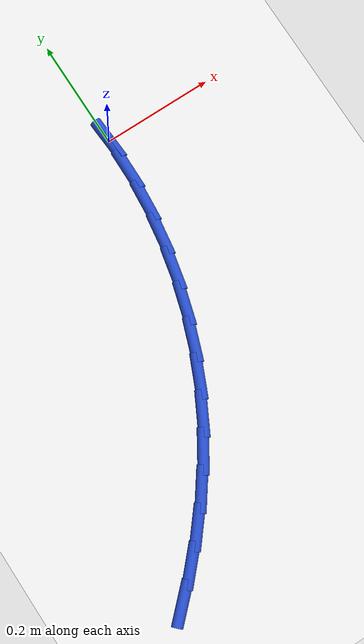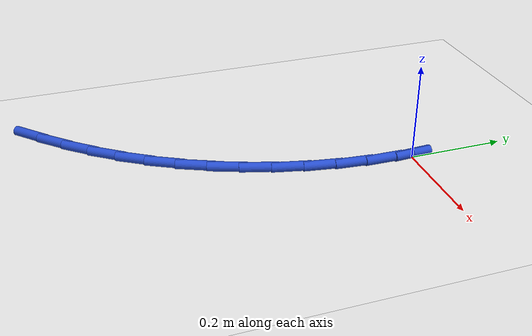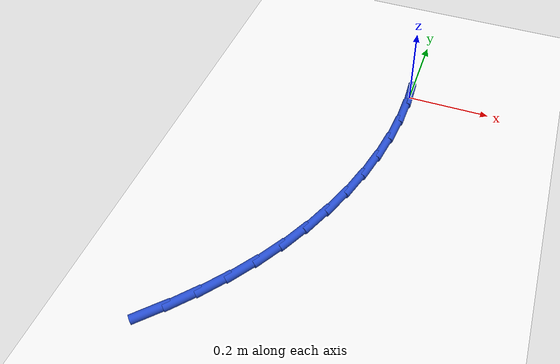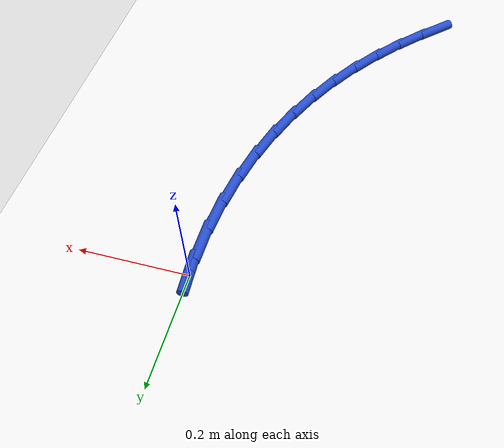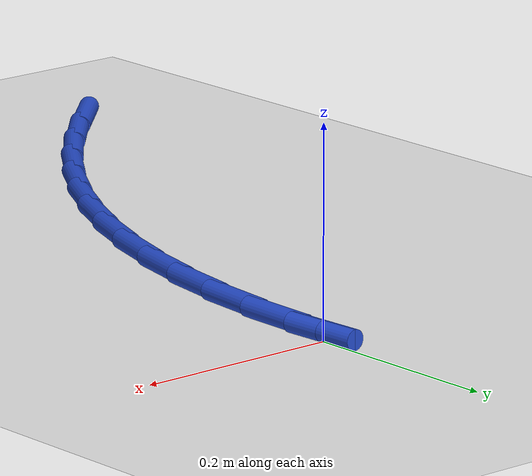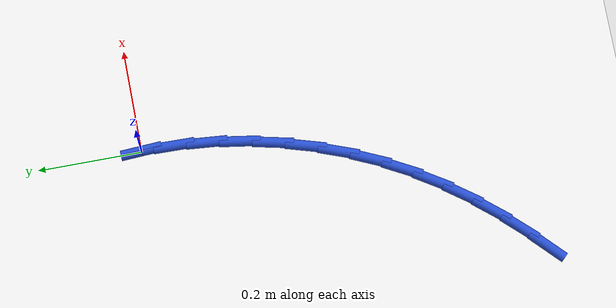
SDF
<sdf version="1.6">
 <world name="default">
  <model name="ground_plane">
   <static>1</static>
   <link name="link">
    <collision name="collision">
     <geometry><plane><normal>0 0 1</normal><size>100 100</size></plane></geometry>
     <surface><friction><ode><mu>100</mu><mu2>50</mu2></ode></friction></surface>
    </collision>
    <visual name="visual">
     <cast_shadows>0</cast_shadows>
     <geometry><plane><normal>0 0 1</normal><size>100 100</size></plane></geometry>
     <material>
      <script><uri>file://media/materials/scripts/gazebo.material</uri><name>Gazebo/WhiteGlow</name></script>
     </material>
    </visual>
   </link>
  </model>
  <model name="line">
   <link name="link_0">
    <pose>3.469446951953614e-18 -8.326672684688674e-17 0.01 0 1.57 -1.5146469651778538</pose>
    <collision name="collision">
     <geometry><cylinder><radius>0.01</radius><length>0.08</length></cylinder></geometry>
    </collision>
    <visual name="visual">
     <material>
      <script><name>Gazebo/Blue</name><uri>file://media/materials/scripts/gazebo.material</uri></script>
     </material>
     <geometry><cylinder><radius>0.01</radius><length>0.08</length></cylinder></geometry>
    </visual>
   </link>
   <link name="link_107">
    <pose>-0.3213144153851772 -0.7251555164156569 0.01 0 1.57 0.7711781265216275</pose>
    <collision name="collision">
     <geometry><cylinder><radius>0.01</radius><length>0.08</length></cylinder></geometry>
    </collision>
    <visual name="visual">
     <material>
      <script><name>Gazebo/Blue</name><uri>file://media/materials/scripts/gazebo.material</uri></script>
     </material>
     <geometry><cylinder><radius>0.01</radius><length>0.08</length></cylinder></geometry>
    </visual>
   </link>
   <link name="link_108">
    <pose>-0.27625879873450443 -0.6813634029291092 0.01 0 1.57 0.8242215288357422</pose>
    <collision name="collision">
     <geometry><cylinder><radius>0.01</radius><length>0.08</length></cylinder></geometry>
    </collision>
    <visual name="visual">
     <material>
      <script><name>Gazebo/Blue</name><uri>file://media/materials/scripts/gazebo.material</uri></script>
     </material>
     <geometry><cylinder><radius>0.01</radius><length>0.08</length></cylinder></geometry>
    </visual>
   </link>
   <link name="link_109">
    <pose>-0.23365669096303793 -0.6353179690920528 0.01 0 1.57 0.8820484446492267</pose>
    <collision name="collision">
     <geometry><cylinder><radius>0.01</radius><length>0.08</length></cylinder></geometry>
    </collision>
    <visual name="visual">
     <material>
      <script><name>Gazebo/Blue</name><uri>file://media/materials/scripts/gazebo.material</uri></script>
     </material>
     <geometry><cylinder><radius>0.01</radius><length>0.08</length></cylinder></geometry>
    </visual>
   </link>
   <link name="link_110">
    <pose>-0.1938464048706337 -0.5869595160419969 0.01 0 1.57 0.9447807090574533</pose>
    <collision name="collision">
     <geometry><cylinder><radius>0.01</radius><length>0.08</length></cylinder></geometry>
    </collision>
    <visual name="visual">
     <material>
      <script><name>Gazebo/Blue</name><uri>file://media/materials/scripts/gazebo.material</uri></script>
     </material>
     <geometry><cylinder><radius>0.01</radius><length>0.08</length></cylinder></geometry>
    </visual>
   </link>
   <link name="link_111">
    <pose>-0.15716625325714806 -0.5362283449164507 0.01 0 1.57 1.0123732235707148</pose>
    <collision name="collision">
     <geometry><cylinder><radius>0.01</radius><length>0.08</length></cylinder></geometry>
    </collision>
    <visual name="visual">
     <material>
      <script><name>Gazebo/Blue</name><uri>file://media/materials/scripts/gazebo.material</uri></script>
     </material>
     <geometry><cylinder><radius>0.01</radius><length>0.08</length></cylinder></geometry>
    </visual>
   </link>
   <link name="link_112">
    <pose>-0.1239532761425032 -0.4830667406533839 0.01 0 1.57 1.0823699681289523</pose>
    <collision name="collision">
     <geometry><cylinder><radius>0.01</radius><length>0.08</length></cylinder></geometry>
    </collision>
    <visual name="visual">
     <material>
      <script><name>Gazebo/Blue</name><uri>file://media/materials/scripts/gazebo.material</uri></script>
     </material>
     <geometry><cylinder><radius>0.01</radius><length>0.08</length></cylinder></geometry>
    </visual>
   </link>
   <link name="link_113">
    <pose>-0.09445603217759825 -0.4275548984264903 0.01 0 1.57 1.151167102961533</pose>
    <collision name="collision">
     <geometry><cylinder><radius>0.01</radius><length>0.08</length></cylinder></geometry>
    </collision>
    <visual name="visual">
     <material>
      <script><name>Gazebo/Blue</name><uri>file://media/materials/scripts/gazebo.material</uri></script>
     </material>
     <geometry><cylinder><radius>0.01</radius><length>0.08</length></cylinder></geometry>
    </visual>
   </link>
   <link name="link_114">
    <pose>-0.06877847342901153 -0.3699984024190381 0.01 0 1.57 1.2188578979815563</pose>
    <collision name="collision">
     <geometry><cylinder><radius>0.01</radius><length>0.08</length></cylinder></geometry>
    </collision>
    <visual name="visual">
     <material>
      <script><name>Gazebo/Blue</name><uri>file://media/materials/scripts/gazebo.material</uri></script>
     </material>
     <geometry><cylinder><radius>0.01</radius><length>0.08</length></cylinder></geometry>
    </visual>
   </link>
   <link name="link_115">
    <pose>-0.047011197923882496 -0.31072365089919457 0.01 0 1.57 1.2859093046366699</pose>
    <collision name="collision">
     <geometry><cylinder><radius>0.01</radius><length>0.08</length></cylinder></geometry>
    </collision>
    <visual name="visual">
     <material>
      <script><name>Gazebo/Blue</name><uri>file://media/materials/scripts/gazebo.material</uri></script>
     </material>
     <geometry><cylinder><radius>0.01</radius><length>0.08</length></cylinder></geometry>
    </visual>
   </link>
   <link name="link_116">
    <pose>-0.029244803689351492 -0.25005704213512914 0.01 0 1.57 1.352796235408003</pose>
    <collision name="collision">
     <geometry><cylinder><radius>0.01</radius><length>0.08</length></cylinder></geometry>
    </collision>
    <visual name="visual">
     <material>
      <script><name>Gazebo/Blue</name><uri>file://media/materials/scripts/gazebo.material</uri></script>
     </material>
     <geometry><cylinder><radius>0.01</radius><length>0.08</length></cylinder></geometry>
    </visual>
   </link>
   <link name="link_117">
    <pose>-0.015569888752557966 -0.188324974395009 0.01 0 1.57 1.419994365844439</pose>
    <collision name="collision">
     <geometry><cylinder><radius>0.01</radius><length>0.08</length></cylinder></geometry>
    </collision>
    <visual name="visual">
     <material>
      <script><name>Gazebo/Blue</name><uri>file://media/materials/scripts/gazebo.material</uri></script>
     </material>
     <geometry><cylinder><radius>0.01</radius><length>0.08</length></cylinder></geometry>
    </visual>
   </link>
   <link name="link_118">
    <pose>-0.00607705114064171 -0.12585384594700236 0.01 0 1.57 1.4879733833978228</pose>
    <collision name="collision">
     <geometry><cylinder><radius>0.01</radius><length>0.08</length></cylinder></geometry>
    </collision>
    <visual name="visual">
     <material>
      <script><name>Gazebo/Blue</name><uri>file://media/materials/scripts/gazebo.material</uri></script>
     </material>
     <geometry><cylinder><radius>0.01</radius><length>0.08</length></cylinder></geometry>
    </visual>
   </link>
   <link name="link_119">
    <pose>-0.0008568888807424044 -0.06297005505927605 0.01 0 1.57 1.5571892877899889</pose>
    <collision name="collision">
     <geometry><cylinder><radius>0.01</radius><length>0.08</length></cylinder></geometry>
    </collision>
    <visual name="visual">
     <material>
      <script><name>Gazebo/Blue</name><uri>file://media/materials/scripts/gazebo.material</uri></script>
     </material>
     <geometry><cylinder><radius>0.01</radius><length>0.08</length></cylinder></geometry>
    </visual>
   </link>
   <link name="link_120">
    <pose>6.938893903907228e-18 4.163336342344337e-17 0.01 0 1.57 -1.5135182690738165</pose>
    <collision name="collision">
     <geometry><cylinder><radius>0.01</radius><length>0.08</length></cylinder></geometry>
    </collision>
    <visual name="visual">
     <material>
      <script><name>Gazebo/Blue</name><uri>file://media/materials/scripts/gazebo.material</uri></script>
     </material>
     <geometry><cylinder><radius>0.01</radius><length>0.08</length></cylinder></geometry>
    </visual>
   </link>
  </model>
 </world>
</sdf>
